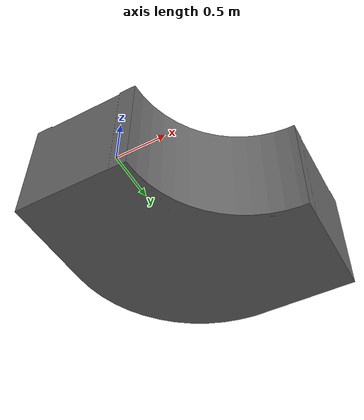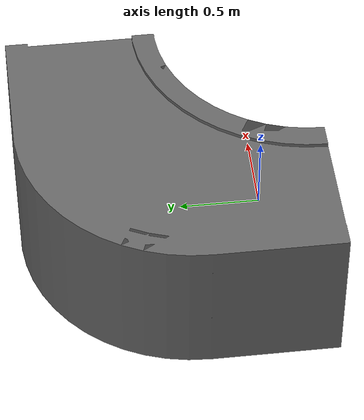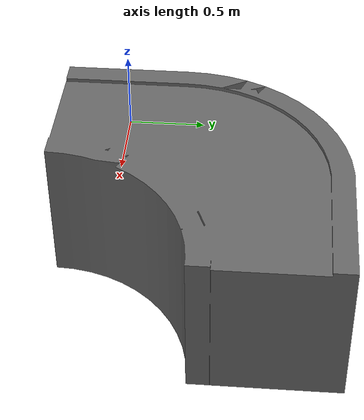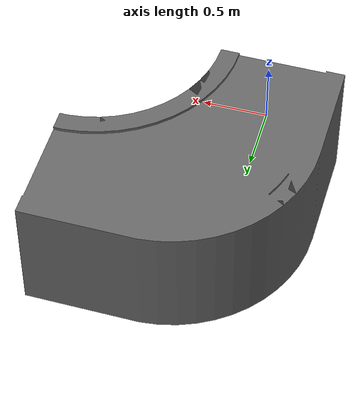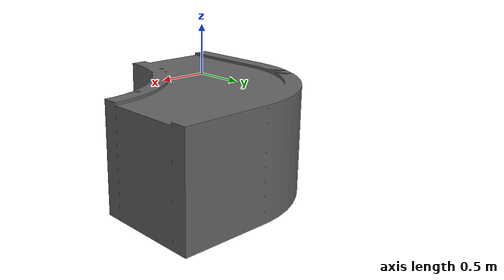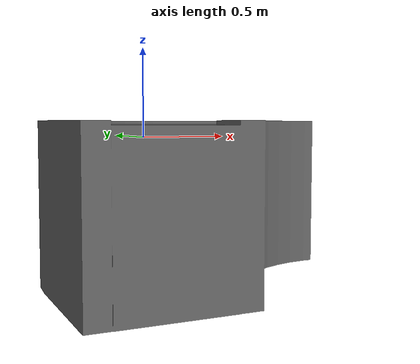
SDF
<?xml version="1.0" ?>
<sdf version="1.4">
  <model name="MascorCity_street_turn_smooth">
    <static>true</static>
    <link name="street_link">
      <pose>0 0 -0.43 1.5708 0 0</pose>
      <collision name="street_colision">
        <geometry>
         <mesh>
            <uri>model://mascor_city_street_turn_smooth/meshes/mascorcity_street_turn_smooth.dae</uri>
            <scale>1 1 1</scale>
          </mesh>
        </geometry>
      </collision>
      <visual name="street_visual">
        <geometry>
          <mesh>
            <uri>model://mascor_city_street_turn_smooth/meshes/mascorcity_street_turn_smooth.dae</uri>
            <scale>1 1 1</scale>
          </mesh>
        </geometry>
      </visual>
    </link>
  </model>
</sdf>
